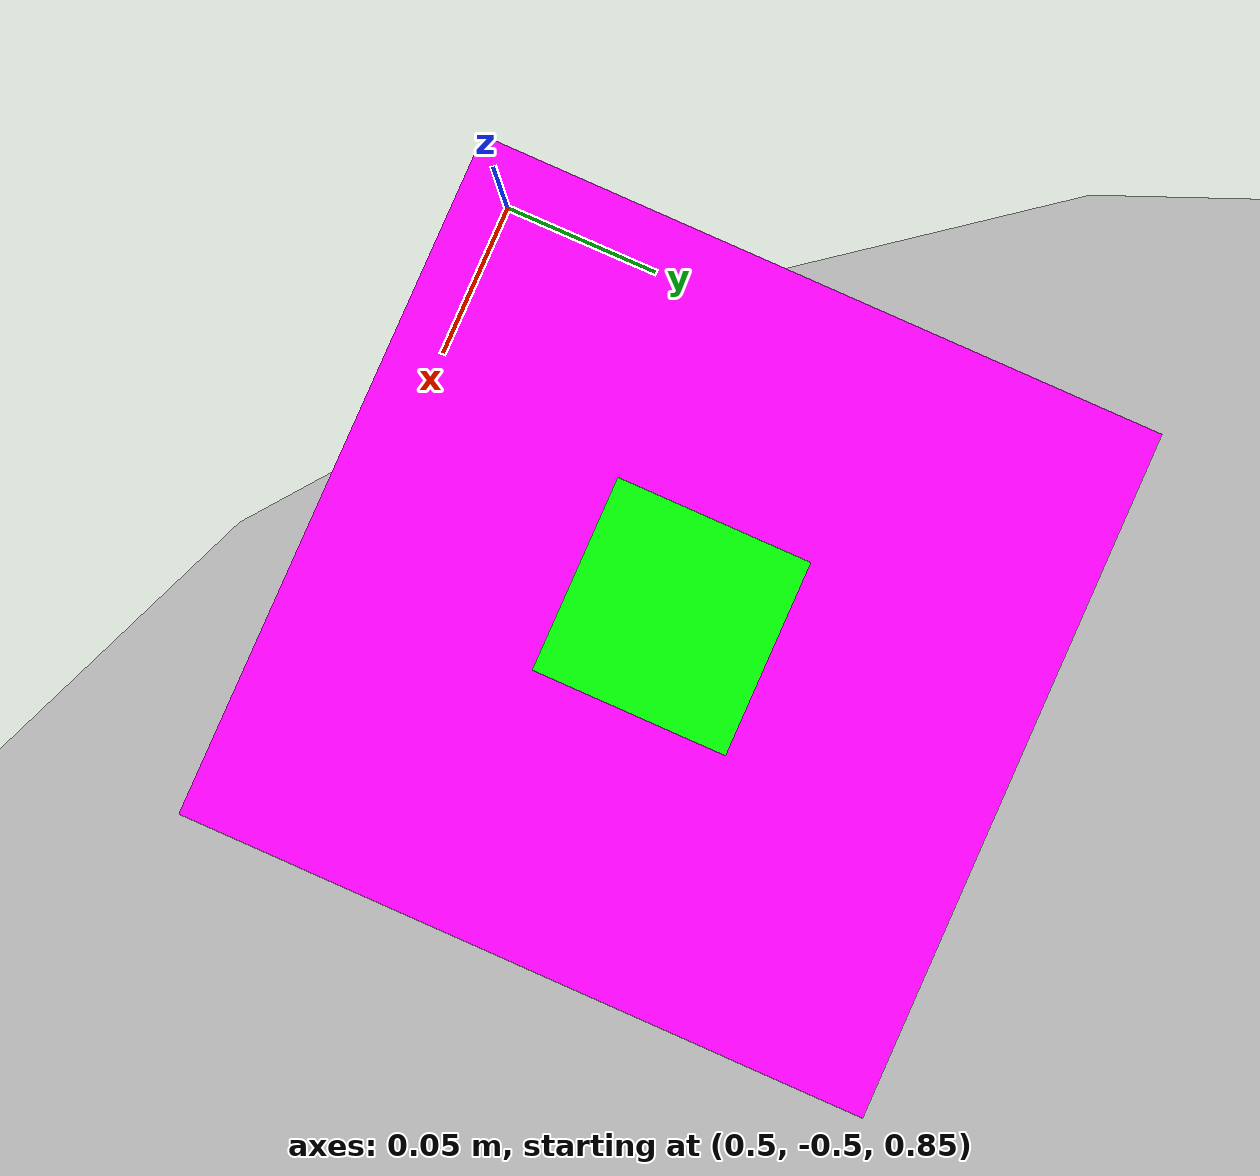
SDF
<?xml version="1.0" ?>
<sdf version="1.6">
  <world name="default">

    <!-- a ground plane -->
    <include>
      <uri>model://ground_plane</uri>
    </include>

    <!-- a global light source -->
    <include>
      <uri>model://sun</uri>
    </include>

    <!-- table -->
    <model name = "table">
      <link name = "table_link">
        <pose> 0.95 0 0.7175 0 0 0 </pose>
        <visual name = "table_link_visual">
          <geometry>
            <cylinder>
              <radius> 0.65 </radius>
              <length> 0.025 </length>
            </cylinder>
          </geometry>
        </visual>
        <collision name = "table_link_collision">
          <geometry>
            <cylinder>
              <radius> 0.65 </radius>
              <length> 0.025 </length>
            </cylinder>
          </geometry>
        </collision>
      </link>
      <static>true</static>
    </model>

    <!-- box -->
    <model name = "box">
      <link name = "box_link">
        <pose> 0.6 -0.4 0.9 0 0 0 </pose>
        <visual name = "box_link_visual">
          <geometry>
            <box>
              <size>0.2 0.2 0.07</size>
            </box>
          </geometry>
          <material>
            <ambient> 1.0 0.0 1.0 1</ambient>
            <diffuse> 1.0 0.0 1.0 1</diffuse>
            <specular>0.1 0.1 0.1 1</specular>
          </material>
        </visual>
        <collision name = "box_link_collision">
          <geometry>
            <box>
              <size>0.22 0.31 0.07</size>
            </box>
          </geometry>
            <surface>
              <friction>
                <ode>
                  <mu>0.5</mu>
                  <mu2>0.5</mu2>
                </ode>
              </friction>
            <bounce>
              <restitution_coefficient>0.4</restitution_coefficient>
              <threshold>0</threshold>
            </bounce>
            <contact>
              <ode>
                <kp>10000</kp>
                <kd>8</kd>
                <max_vel>0</max_vel>
                <min_depth>0</min_depth>
              </ode>
            </contact>
          </surface>
        </collision>
      </link>
      <static>true</static>
    </model>

    <!-- cube -->
    <model name = "cube">
      <link name = "cube_link">
        <pose> 0.6 -0.4 0.975 0 0 0 </pose>
        <inertial>
            <mass> 0.038 </mass>
            <inertia>
              <ixx> 0.000015 </ixx>
              <ixy> 0.0 </ixy>
              <ixz> 0.0 </ixz>
              <iyy> 0.000015 </iyy>
              <iyz> 0.0 </iyz>
              <izz> 0.000015 </izz>
          </inertia>
        </inertial>
        <visual name = "cube_link_visual">
          <geometry>
            <box>
              <size>0.05 0.05 0.05</size>
            </box>
          </geometry>
          <material>
            <ambient> 0.0 1.0 0.0 1</ambient>
            <diffuse> 0.0 1.0 0.0 1</diffuse>
            <specular>0.1 0.1 0.1 1</specular>
          </material>
        </visual>
        <collision name = "cube_link_collision">
          <geometry>
            <box>
              <size>0.05 0.05 0.05</size>
            </box>
          </geometry>
          <surface>
            <friction>
              <ode>
                <mu>0.4</mu>
                <mu2>0.4</mu2>
              </ode>
            </friction>
            <bounce>
              <restitution_coefficient>0.2</restitution_coefficient>
              <threshold>0</threshold>
            </bounce>
            <contact>
              <ode>
                <kd>8</kd>
                <max_vel>1000</max_vel>
                <min_depth>0.001</min_depth>
              </ode>
            </contact>
          </surface>
        </collision>
      </link>

      <!-- Listener plugin for cube position and velocity -->
      <plugin name="cube_control" filename="libcube_plugin.so"/>
    </model>

    <!-- world physics -->
    <physics type="ode">
      <real_time_update_rate>1000.0</real_time_update_rate>
    </physics>

    <!-- gravity -->
    <gravity>
      0.0 0.0 -9.81
    </gravity>

    <!-- view -->
    <gui fullscreen='0'>
      <camera name='user_camera'>
        <pose frame=''>2.69836 -0.874828 2.04939 0 0.399643 2.75619</pose>
        <view_controller>orbit</view_controller>
        <projection_type>perspective</projection_type>
      </camera>
    </gui>

  </world>
</sdf>
